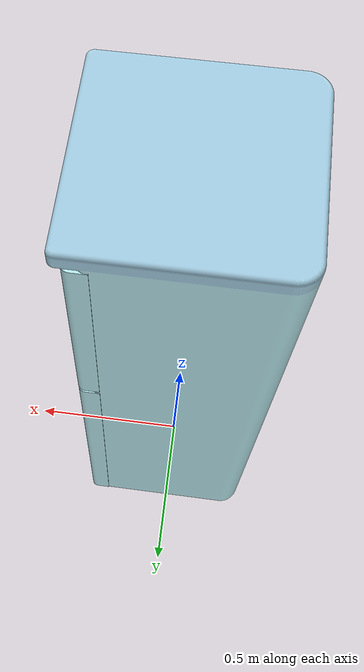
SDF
<?xml version="1.0"?>
<sdf version="1.4">
  <model name="refrigerator">
    <static>false</static>
   <link name="body">
      <inertial>
        <mass>30</mass>
        <inertia>
          <ixx>1</ixx>
          <ixy>0</ixy>
          <ixz>0</ixz>
          <iyy>1</iyy>
          <iyz>0</iyz>
          <izz>0.3</izz>
        </inertia>
      </inertial>
      <visual name="visual_body">
        <geometry>
          <mesh>
            <uri>model://refrigerator/meshes/refrigerator_body.dae</uri>
          </mesh>
        </geometry>
      </visual>

      <collision name="body_1">
	<pose>-0.008 0 0.015 0 0 0</pose>
        <geometry>
	<box><size>0.49 0.55 0.03</size></box>
        </geometry>
      </collision>

      <collision name="body_2">
	<pose>-0.008 0.275 0.786 0 0 0</pose>
        <geometry>
	<box><size>0.49 0.005 1.566</size></box>
        </geometry>
      </collision>

      <collision name="body_3">
	<pose>-0.008 -0.275 0.783 0 0 0</pose>
        <geometry>
	<box><size>0.49 0.005 1.566</size></box>
        </geometry>
      </collision>

      <collision name="body_4">
	<pose>-0.253 0 0.783 0 0 0</pose>
        <geometry>
	<box><size>0.004 0.55 1.566</size></box>
        </geometry>
      </collision>

      <collision name="body_5">
	<pose>-0.008 0 0.529 0 0 0</pose>
        <geometry>
	<box><size>0.49 0.55 0.015</size></box>
        </geometry>
      </collision>

      <collision name="body_6">
	<pose>-0.008 0 0.9124 0 0 0</pose>
        <geometry>
	<box><size>0.49 0.55 0.015</size></box>
        </geometry>
      </collision>

      <collision name="body_7">
	<pose>-0.008 0 1.1464 0 0 0</pose>
        <geometry>
	<box><size>0.49 0.55 0.015</size></box>
        </geometry>
      </collision>

      <collision name="body_8">
	<pose>0.022 0 1.55 0 0 0</pose>
        <geometry>
	<box><size>0.55 0.55 0.036</size></box>
        </geometry>
      </collision>

    </link>

<link name="down_door">
      <inertial>
        <mass>0.8</mass>
        <inertia>
          <ixx>1</ixx>
          <ixy>0</ixy>
          <ixz>0</ixz>
          <iyy>1</iyy>
          <iyz>0</iyz>
          <izz>1</izz>
        </inertia>
      </inertial>
	<pose>0.24 0 0.03 0 0 0</pose>
	<visual name="visual_down_door">
	<pose>0 0 0 0 0 0</pose>
        <geometry>
          <mesh>
            <uri>model://refrigerator/meshes/refrigerator_down_door.dae</uri>
	    <scale>1 1 1.1</scale>
          </mesh>
        </geometry>
      </visual>

      <collision name="dd">
	<pose>0 0 0.44 0 0 0</pose>
        <geometry>
	<box><size>0.06 0.55 0.88</size></box>
        </geometry>
      </collision>

</link>

<link name="up_door">
      <inertial>
        <mass>0.8</mass>
        <inertia>
          <ixx>1</ixx>
          <ixy>0</ixy>
          <ixz>0</ixz>
          <iyy>1</iyy>
          <iyz>0</iyz>
          <izz>1</izz>
        </inertia>
      </inertial>
	<pose>0.24 0 0.92 0 0 0</pose>
	<visual name="visual_up_door">
	<pose>-0.004 0.012 0 0 0 0</pose>
        <geometry>
          <mesh>
            <uri>model://refrigerator/meshes/refrigerator_up_door.dae</uri>
          </mesh>
        </geometry>
      </visual>

      <collision name="ud">
	<pose>0 0 0.3 0 0 0</pose>
        <geometry>
	<box><size>0.06 0.55 0.6</size></box>
        </geometry>
      </collision>

</link>

      <joint type="revolute" name="up_door_joint">
        <pose>0 0.275 0 0 0 0</pose>
        <child>up_door</child>
        <parent>body</parent>
        <axis>
    		<limit>
      			<upper>2</upper>
      			<lower>0</lower>
    		</limit>
          <xyz>0 0 1</xyz>
          <dynamics>
            <damping>10</damping>
          </dynamics>
        </axis>
      </joint>

      <joint type="revolute" name="down_door_joint">
        <pose>0 0.275 0 0 0 0</pose>
        <child>down_door</child>
        <parent>body</parent>
        <axis>
    		<limit>
      			<upper>2</upper>
      			<lower>0</lower>
    		</limit>
          <xyz>0 0 1</xyz>
          <dynamics>
            <damping>10</damping>
          </dynamics>
        </axis>
      </joint>

  </model>
</sdf>
